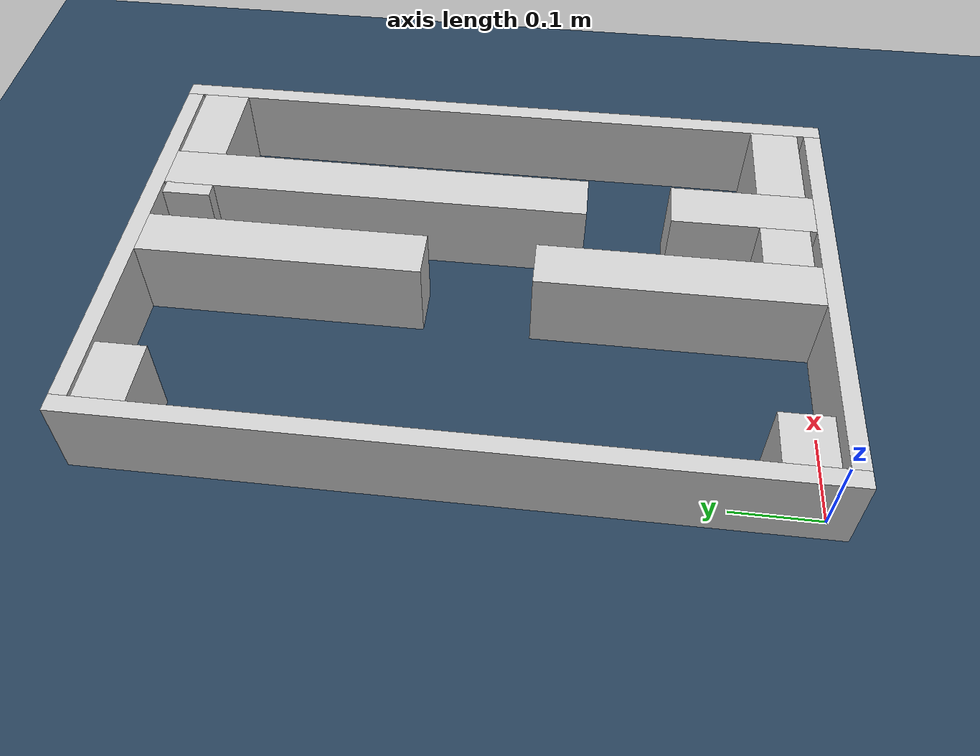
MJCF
<?xml version="1.0" ?>
<mujoco model="generated_real_template">
  <compiler angle="degree"/>
  <option timestep="0.002" integrator="implicitfast" iterations="100" cone="elliptic"/>
  <default>
    <geom density="1"/>
  </default>
  <asset>
    <texture builtin="gradient" height="3072" rgb1="0.3 0.5 0.7" rgb2="0 0 0" type="skybox" width="512"/>
    <texture builtin="checker" height="300" mark="edge" markrgb="0.8 0.8 0.8" name="groundplane" rgb1="0.2 0.3 0.4" rgb2="0.1 0.2 0.3" type="2d" width="300"/>
    <material name="groundplane" reflectance="0.2" texrepeat="5 5" texture="groundplane" texuniform="true"/>
  </asset>
  <worldbody>
    <light dir="0 0 -1" directional="true" pos="0 0 1.5"/>
    <geom name="floor" type="plane" condim="4" friction="0.5 0.005 0.001" material="groundplane" size="0 0 0.05"/>
    <body name="walls">
      <geom name="wall_boundary_left" type="box" condim="4" friction="1.0 0.005 0.0001" rgba="0.8 0.8 0.8 1" pos="-0.010000 0.387500 0.050000" euler="0 0 0.000000" size="0.010000 0.407500 0.050000"/>
      <geom name="wall_boundary_right" type="box" condim="4" friction="1.0 0.005 0.0001" rgba="0.8 0.8 0.8 1" pos="0.500000 0.387500 0.050000" euler="0 0 0.000000" size="0.010000 0.407500 0.050000"/>
      <geom name="wall_boundary_bottom" type="box" condim="4" friction="1.0 0.005 0.0001" rgba="0.8 0.8 0.8 1" pos="0.245000 -0.010000 0.050000" euler="0 0 0.000000" size="0.245000 0.010000 0.050000"/>
      <geom name="wall_boundary_top" type="box" condim="4" friction="1.0 0.005 0.0001" rgba="0.8 0.8 0.8 1" pos="0.245000 0.785000 0.050000" euler="0 0 0.000000" size="0.245000 0.010000 0.050000"/>
      <geom name="wall_inner_1_1" type="box" condim="4" friction="1.0 0.005 0.0001" rgba="0.8 0.8 0.8 1" pos="0.348544 0.083708 0.050000" euler="0 0 90.000000" size="0.083708 0.028500 0.050000"/>
      <geom name="wall_inner_1_2" type="box" condim="4" friction="1.0 0.005 0.0001" rgba="0.8 0.8 0.8 1" pos="0.348544 0.520390 0.050000" euler="0 0 90.000000" size="0.254610 0.028500 0.050000"/>
      <geom name="wall_inner_2_1" type="box" condim="4" friction="1.0 0.005 0.0001" rgba="0.8 0.8 0.8 1" pos="0.235674 0.160345 0.050000" euler="0 0 90.000000" size="0.160345 0.028500 0.050000"/>
      <geom name="wall_inner_2_2" type="box" condim="4" friction="1.0 0.005 0.0001" rgba="0.8 0.8 0.8 1" pos="0.235674 0.610489 0.050000" euler="0 0 90.000000" size="0.164511 0.028500 0.050000"/>
      <geom name="wall_inner_3_1" type="box" condim="4" friction="1.0 0.005 0.0001" rgba="0.8 0.8 0.8 1" pos="0.035575 0.743158 0.050000" euler="0 0 0.000000" size="0.035575 0.028500 0.050000"/>
      <geom name="wall_inner_3_2" type="box" condim="4" friction="1.0 0.005 0.0001" rgba="0.8 0.8 0.8 1" pos="0.396140 0.743158 0.050000" euler="0 0 0.000000" size="0.093860 0.028500 0.050000"/>
      <geom name="wall_inner_4_1" type="box" condim="4" friction="1.0 0.005 0.0001" rgba="0.8 0.8 0.8 1" pos="0.029964 0.037046 0.050000" euler="0 0 0.000000" size="0.029964 0.028500 0.050000"/>
      <geom name="wall_inner_4_2" type="box" condim="4" friction="1.0 0.005 0.0001" rgba="0.8 0.8 0.8 1" pos="0.364945 0.037046 0.050000" euler="0 0 0.000000" size="0.125055 0.028500 0.050000"/>
    </body>
  </worldbody>
</mujoco>
